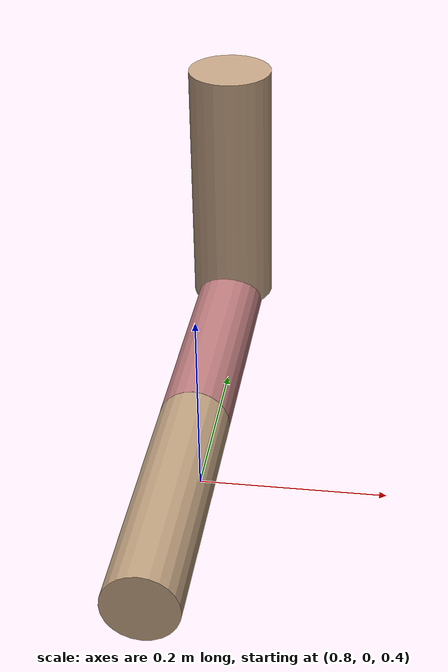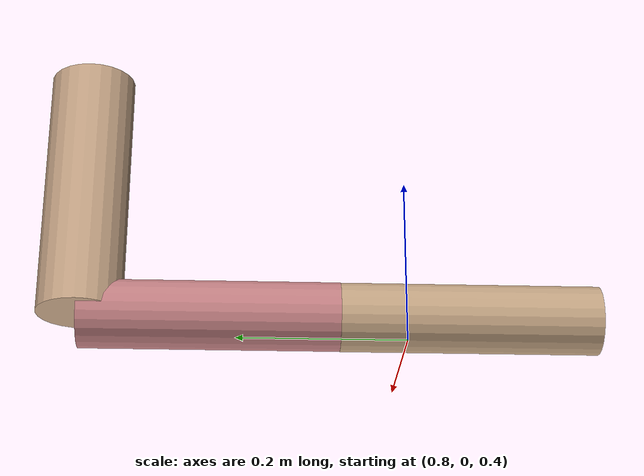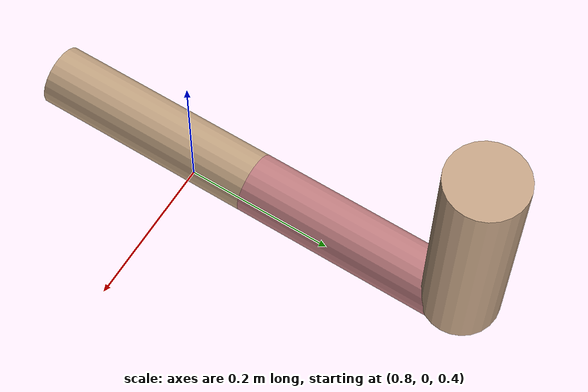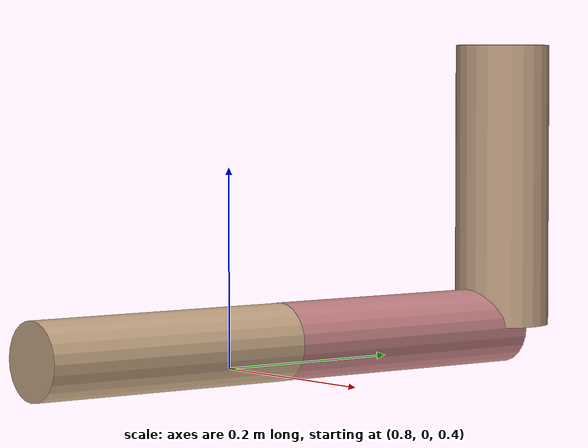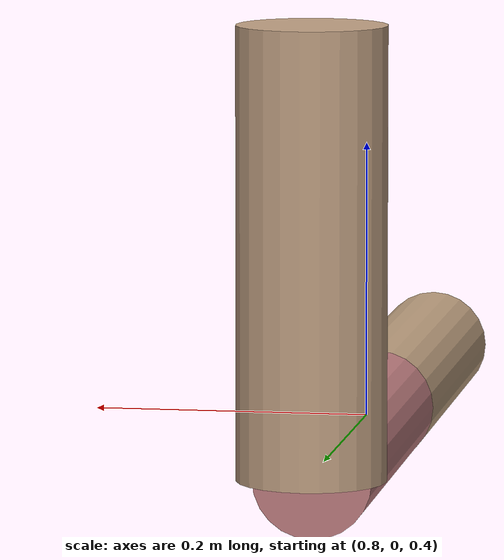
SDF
<?xml version="1.0" ?>
<sdf version="1.7">
  <model name="limb">
    <link name="limb_base">
      <pose>0.78 0.38 0.57 0 0 0</pose>
      <visual name="base_visual">
        <geometry>
          <cylinder>
            <radius>0.05</radius>
            <length>0.3</length>
          </cylinder>
        </geometry>
        <material>
          <diffuse>0.78 0.65 0.53 1</diffuse>
        </material>
      </visual>
    </link>
    <link name="link1">
      <pose>0.78 0.23 0.42 1.57 0 0</pose>
      <inertial>
        <mass>1</mass>
        <inertia>
          <ixx>0.01455</ixx>
          <iyy>0.01455</iyy>
          <izz>1.041667e-05</izz>
          <ixy>0</ixy>
          <ixz>0</ixz>
          <iyz>0</iyz>
        </inertia>
      </inertial>
      <visual name="link1_visual">
        <geometry>
          <cylinder>
            <radius>0.04</radius>
            <length>0.3</length>
          </cylinder>
        </geometry>
        <material>
          <diffuse>0.76 0.5 0.51 1</diffuse>
        </material>
      </visual>
      <!-- using multiple collision spheres for collision geometry -->
      <collision name="link1_coll1">
        <geometry>
          <sphere>
            <radius>0.041</radius>
          </sphere>
        </geometry>
        <drake:proximity_properties>
          <drake:compliant_hydroelastic/>
          <drake:hydroelastic_modulus>2.5e7</drake:hydroelastic_modulus>
          <drake:mesh_resolution_hint>0.01</drake:mesh_resolution_hint>
          <drake:mu_dynamic>1.0</drake:mu_dynamic>
          <drake:mu_static>1.0</drake:mu_static>
          <drake:hunt_crossley_dissipation>0.25</drake:hunt_crossley_dissipation>
        </drake:proximity_properties>
        <pose>0 0 0 0 0 0</pose>
      </collision>
      <collision name="link1_coll2">
        <geometry>
          <sphere>
            <radius>0.041</radius>
          </sphere>
        </geometry>
        <drake:proximity_properties>
          <drake:compliant_hydroelastic/>
          <drake:hydroelastic_modulus>2.5e7</drake:hydroelastic_modulus>
          <drake:mesh_resolution_hint>0.01</drake:mesh_resolution_hint>
          <drake:mu_dynamic>1.0</drake:mu_dynamic>
          <drake:mu_static>1.0</drake:mu_static>
          <drake:hunt_crossley_dissipation>0.25</drake:hunt_crossley_dissipation>
        </drake:proximity_properties>
        <pose>0 0 -0.05 0 0 0</pose>
      </collision>
      <collision name="link1_coll3">
        <geometry>
          <sphere>
            <radius>0.041</radius>
          </sphere>
        </geometry>
        <drake:proximity_properties>
          <drake:compliant_hydroelastic/>
          <drake:hydroelastic_modulus>2.5e7</drake:hydroelastic_modulus>
          <drake:mesh_resolution_hint>0.01</drake:mesh_resolution_hint>
          <drake:mu_dynamic>1.0</drake:mu_dynamic>
          <drake:mu_static>1.0</drake:mu_static>
          <drake:hunt_crossley_dissipation>0.25</drake:hunt_crossley_dissipation>
        </drake:proximity_properties>
        <pose>0 0 0.05 0 0 0</pose>
      </collision>
      <collision name="link1_coll5">
        <geometry>
          <sphere>
            <radius>0.041</radius>
          </sphere>
        </geometry>
        <drake:proximity_properties>
          <drake:compliant_hydroelastic/>
          <drake:hydroelastic_modulus>2.5e7</drake:hydroelastic_modulus>
          <drake:mesh_resolution_hint>0.01</drake:mesh_resolution_hint>
          <drake:mu_dynamic>1.0</drake:mu_dynamic>
          <drake:mu_static>1.0</drake:mu_static>
          <drake:hunt_crossley_dissipation>0.25</drake:hunt_crossley_dissipation>
        </drake:proximity_properties>
        <pose>0 0 0.10 0 0 0</pose>
      </collision>
      <collision name="link1_coll6">
        <geometry>
          <sphere>
            <radius>0.041</radius>
          </sphere>
        </geometry>
        <drake:proximity_properties>
          <drake:compliant_hydroelastic/>
          <drake:hydroelastic_modulus>2.5e7</drake:hydroelastic_modulus>
          <drake:mesh_resolution_hint>0.01</drake:mesh_resolution_hint>
          <drake:mu_dynamic>1.0</drake:mu_dynamic>
          <drake:mu_static>1.0</drake:mu_static>
          <drake:hunt_crossley_dissipation>0.25</drake:hunt_crossley_dissipation>
        </drake:proximity_properties>
        <pose>0 0 -0.10 0 0 0</pose>
      </collision>
    </link>
    <joint name="joint1" type="revolute">
      <parent>limb_base</parent>
      <child>link1</child>
      <axis>
        <xyz>1 0 0</xyz>
        <limit>
          <lower>-2.14159</lower>
          <upper>2.14159</upper>
          <effort>0</effort>
          <velocity>1.0</velocity>
        </limit>
        <dynamics>
          <damping>1.0</damping>
          <friction>1000.0</friction>
        </dynamics>
      </axis>
      <pose>0 0 -0.075 0 0 0</pose>
    </joint>
    <link name="link2">
      <pose>0.78 -0.07 0.42 1.57 0 0</pose>
      <inertial>
        <mass>1</mass>
        <inertia>
          <ixx>0.07275</ixx>
          <iyy>0.07275</iyy>
          <izz>1.041667e-05</izz>
          <ixy>0</ixy>
          <ixz>0</ixz>
          <iyz>0</iyz>
        </inertia>
      </inertial>
      <visual name="link2_visual">
        <geometry>
          <cylinder>
            <radius>0.04</radius>
            <length>0.3</length>
          </cylinder>
        </geometry>
        <material>
          <diffuse>0.76 0.64 0.51 1</diffuse>
        </material>
      </visual>
      <collision name="link2_collision1">
        <geometry>
          <sphere>
            <radius>0.04</radius>
          </sphere>
        </geometry>
        <drake:proximity_properties>
          <drake:compliant_hydroelastic/>
          <drake:hydroelastic_modulus>2.5e7</drake:hydroelastic_modulus>
          <drake:mesh_resolution_hint>0.01</drake:mesh_resolution_hint>
          <drake:mu_dynamic>1.0</drake:mu_dynamic>
          <drake:mu_static>1.0</drake:mu_static>
          <drake:hunt_crossley_dissipation>0.25</drake:hunt_crossley_dissipation>
        </drake:proximity_properties>
      </collision>
      <collision name="link2_collision2">
        <geometry>
          <sphere>
            <radius>0.04</radius>
          </sphere>
        </geometry>
        <drake:proximity_properties>
          <drake:compliant_hydroelastic/>
          <drake:hydroelastic_modulus>2.5e7</drake:hydroelastic_modulus>
          <drake:mesh_resolution_hint>0.01</drake:mesh_resolution_hint>
          <drake:mu_dynamic>1.0</drake:mu_dynamic>
          <drake:mu_static>1.0</drake:mu_static>
          <drake:hunt_crossley_dissipation>0.25</drake:hunt_crossley_dissipation>
        </drake:proximity_properties>
        <pose>0 0 -0.05 0 0 0</pose>
      </collision>
      <collision name="link2_collision3">
        <geometry>
          <sphere>
            <radius>0.04</radius>
          </sphere>
        </geometry>
        <drake:proximity_properties>
          <drake:compliant_hydroelastic/>
          <drake:hydroelastic_modulus>2.5e7</drake:hydroelastic_modulus>
          <drake:mesh_resolution_hint>0.01</drake:mesh_resolution_hint>
          <drake:mu_dynamic>1.0</drake:mu_dynamic>
          <drake:mu_static>1.0</drake:mu_static>
          <drake:hunt_crossley_dissipation>0.25</drake:hunt_crossley_dissipation>
        </drake:proximity_properties>
        <pose>0 0 0.05 0 0 0</pose>
      </collision>
      <collision name="link2_collision5">
        <geometry>
          <sphere>
            <radius>0.04</radius>
          </sphere>
        </geometry>
        <drake:proximity_properties>
          <drake:compliant_hydroelastic/>
          <drake:hydroelastic_modulus>2.5e7</drake:hydroelastic_modulus>
          <drake:mesh_resolution_hint>0.01</drake:mesh_resolution_hint>
          <drake:mu_dynamic>1.0</drake:mu_dynamic>
          <drake:mu_static>1.0</drake:mu_static>
          <drake:hunt_crossley_dissipation>0.25</drake:hunt_crossley_dissipation>
        </drake:proximity_properties>
        <pose>0 0 0.10 0 0 0</pose>
      </collision>
      <collision name="link2_collision6">
        <geometry>
          <sphere>
            <radius>0.04</radius>
          </sphere>
        </geometry>
        <drake:proximity_properties>
          <drake:compliant_hydroelastic/>
          <drake:hydroelastic_modulus>2.5e7</drake:hydroelastic_modulus>
          <drake:mesh_resolution_hint>0.01</drake:mesh_resolution_hint>
          <drake:mu_dynamic>1.0</drake:mu_dynamic>
          <drake:mu_static>1.0</drake:mu_static>
          <drake:hunt_crossley_dissipation>0.25</drake:hunt_crossley_dissipation>
        </drake:proximity_properties>
        <pose>0 0 -0.10 0 0 0</pose>
      </collision>
      <collision name="link2_collision7">
        <geometry>
          <sphere>
            <radius>0.04</radius>
          </sphere>
        </geometry>
        <drake:proximity_properties>
          <drake:compliant_hydroelastic/>
          <drake:hydroelastic_modulus>2.5e7</drake:hydroelastic_modulus>
          <drake:mesh_resolution_hint>0.01</drake:mesh_resolution_hint>
          <drake:mu_dynamic>1.0</drake:mu_dynamic>
          <drake:mu_static>1.0</drake:mu_static>
          <drake:hunt_crossley_dissipation>0.25</drake:hunt_crossley_dissipation>
        </drake:proximity_properties>
        <pose>0 0 -0.15 0 0 0</pose>
      </collision>
    </link>

    <joint name="joint2" type="revolute">
      <parent>link1</parent>
      <child>link2</child>
      <axis>
        <xyz>1 0 0</xyz>
        <limit>
          <lower>-0.2</lower>
          <upper>2.14</upper>
          <effort>0</effort>
          <velocity>1.0</velocity>
        </limit>
        <dynamics>
          <damping>1</damping>
          <friction>1000</friction>
        </dynamics>
      </axis>
      <pose>0.0 0 -0.15 0 0 0</pose>
    </joint>
  </model>
</sdf>
